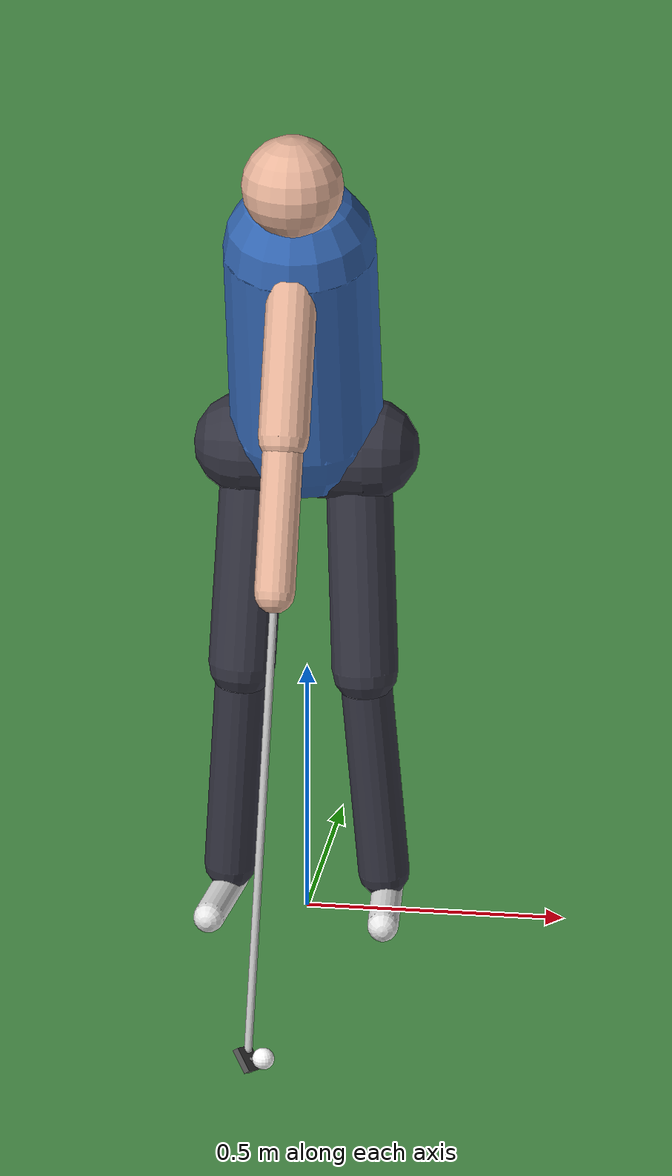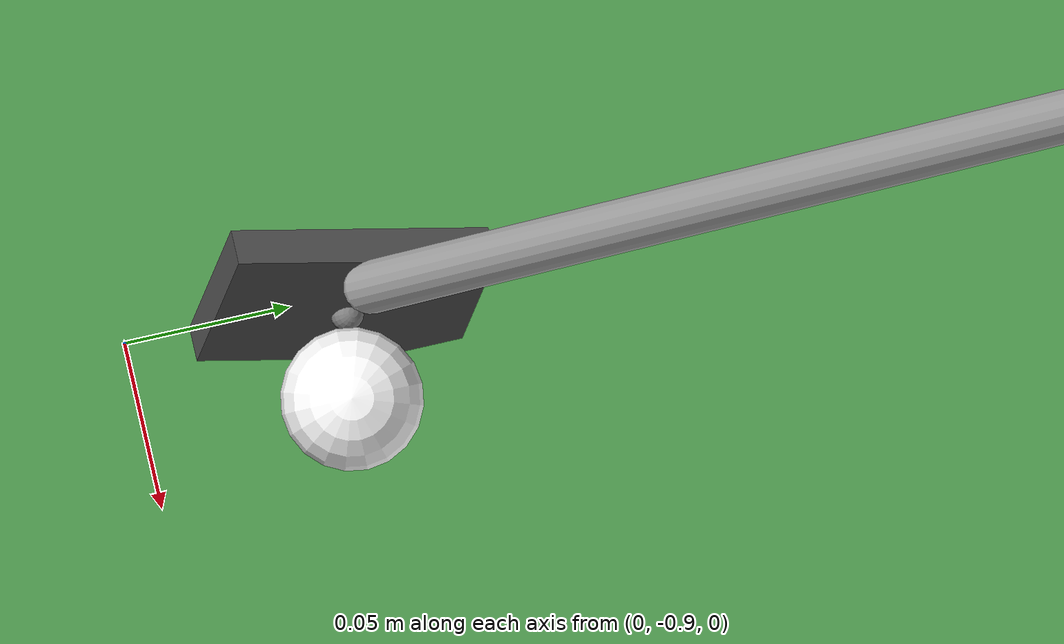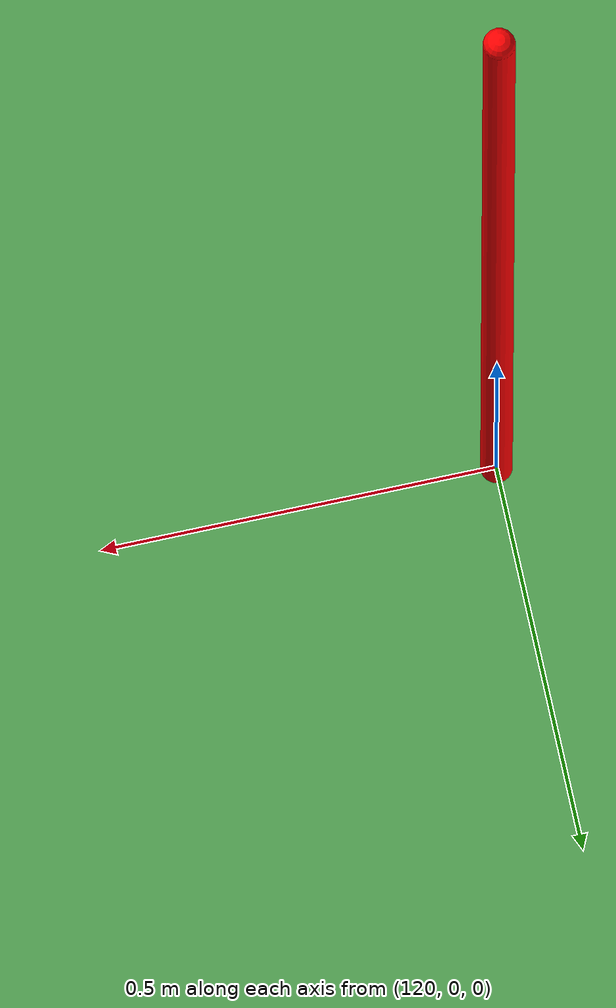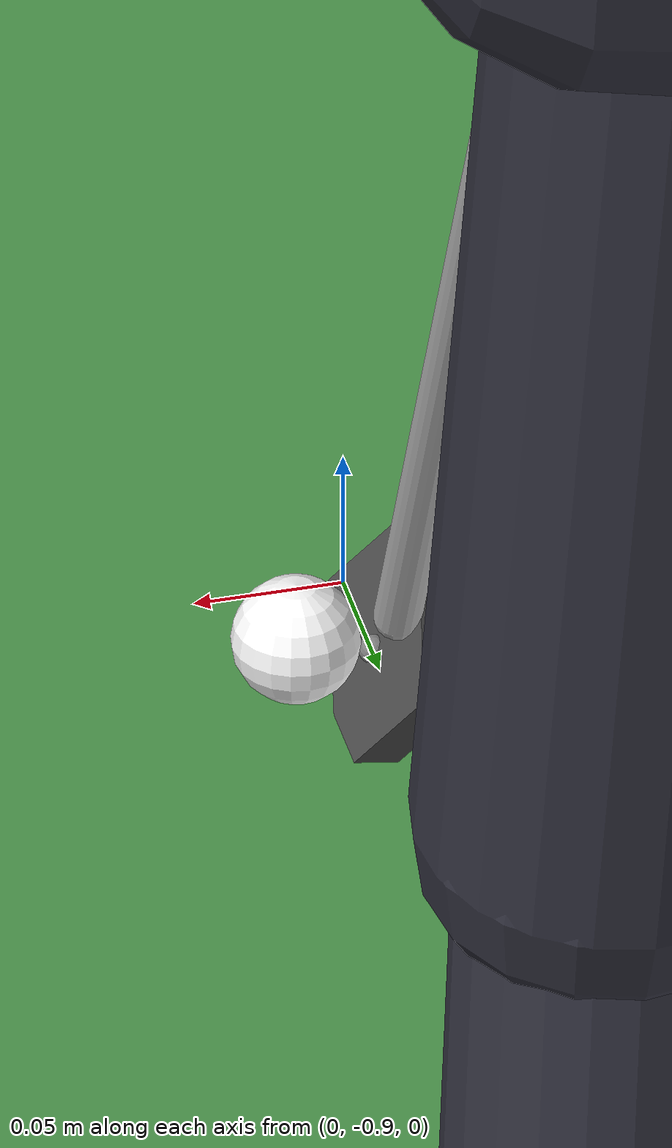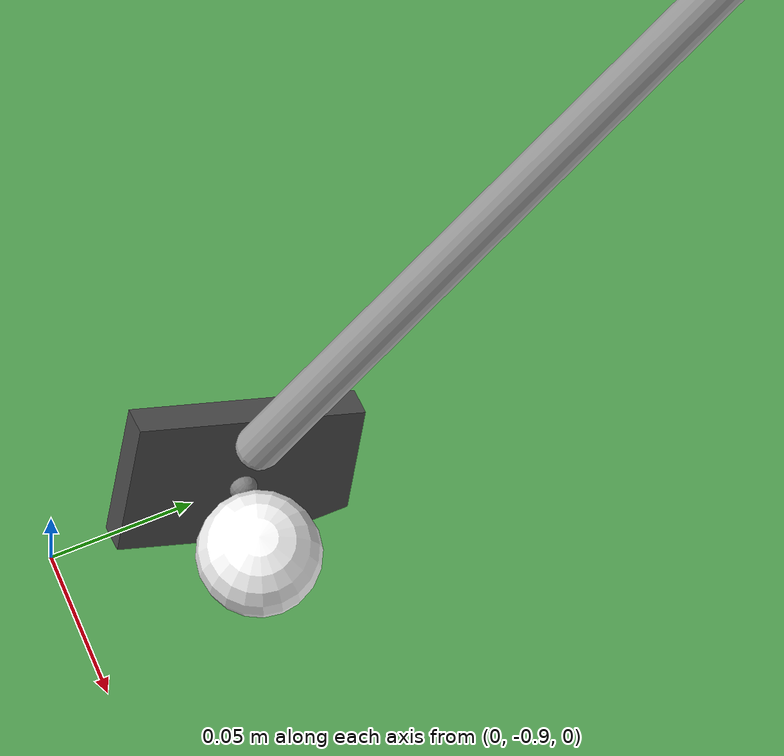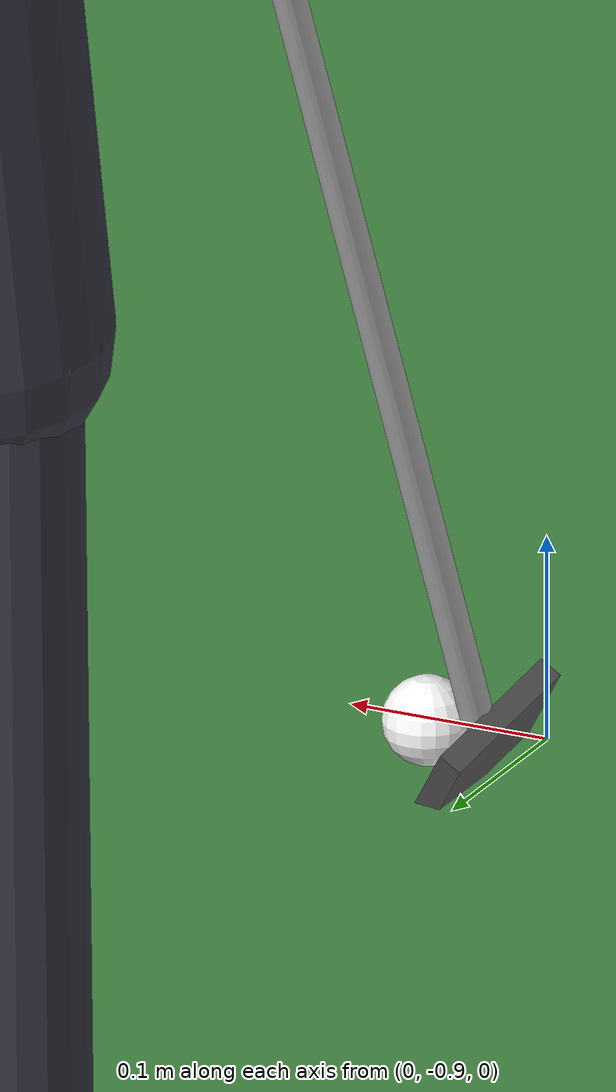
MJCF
<mujoco model="golfista">

  <!-- dt pequeno: a cabeça do taco chega a ~40 m/s. Com dt = 0.002 s andava
       8 cm por passo e podia atravessar a bola (diâmetro 4.3 cm). -->
  <option timestep="0.00005" integrator="implicitfast" gravity="0 0 -9.81"
          density="1.2" viscosity="0.000018"/>

  <visual>
    <map zfar="300"/>
  </visual>

  <!-- valores por omissão para não repetir em todas as geoms e juntas -->
  <default>
    <geom contype="0" conaffinity="0"/>
    <joint type="hinge"/>
  </default>

  <worldbody>
    <light directional="true" pos="0 -2 5" dir="0.2 0.4 -1"/>
    <geom name="chao" type="plane" size="150 30 0.1" rgba="0.3 0.6 0.3 1"/>

    <!-- alvo (bandeira) a 120 m -->
    <geom name="bandeira" type="capsule" fromto="120 0 0  120 0 2" size="0.02" rgba="1 0 0 1"/>

    <camera name="frente" pos="0 -3.5 1" xyaxes="1 0 0  0 0 1"/>
    <camera name="lado" pos="-3.5 -0.5 1.2" xyaxes="0 -1 0  0 0 1"/>

    <!-- ================= PERNA ESQUERDA (raiz da árvore) ================= -->
    <!-- pé esquerdo: preso ao chão (body sem junta). Frame no tornozelo. -->
    <body name="pe_esq" pos="0.15 0 0.08">
      <geom name="pe_esq" type="capsule" fromto="0 0.06 -0.05  0.02 -0.16 -0.05" size="0.03" mass="1" rgba="0.9 0.9 0.9 1"/>

      <!-- perna (canela): frame no tornozelo -->
      <body name="perna_esq">
        <!-- tornozelo: dorsiflexão (+) / flexão plantar (-) -->
        <joint name="tornozelo_esq_flex" axis="1 0 0" range="-46 24" damping="2" frictionloss="0.5"/>
        <!-- tornozelo: inversão/eversão (o pé "rola" para o lado) -->
        <joint name="tornozelo_esq_lado" axis="0 1 0" range="-20 20" damping="2" frictionloss="0.5"/>
        <!-- tornozelo: abdução/adução (a ponta do pé roda para dentro/fora) -->
        <joint name="tornozelo_esq_rot" axis="0 0 1" range="-10 10" damping="2" frictionloss="0.5"/>
        <!-- perna: 0.44 m, 3.5 kg -->
        <geom name="perna_esq" type="capsule" fromto="0 0 0  -0.03 -0.05 0.44" size="0.05" mass="3.5" rgba="0.2 0.2 0.25 1"/>

        <!-- coxa: frame no joelho -->
        <body name="coxa_esq" pos="-0.03 -0.05 0.44">
          <!-- joelho (negativo = dobrar). Flexão máx. 120 graus; já está 13 graus fletido -->
          <joint name="joelho_esq" axis="1 0 0" range="-107 13" damping="2" frictionloss="0.5"/>
          <!-- coxa: 0.44 m, 7.5 kg -->
          <geom name="coxa_esq" type="capsule" fromto="0 0 0  -0.02 0.05 0.44" size="0.065" mass="7.5" rgba="0.2 0.2 0.25 1"/>

          <!-- ================= PÉLVIS ================= -->
          <!-- frame na anca esquerda -->
          <body name="pelvis" pos="-0.02 0.05 0.44">
            <!-- anca esquerda: flexão, abdução e rotação (roda a anca sobre a perna esquerda) -->
            <!-- flexão (+) 120 / extensão 30 graus; já está 6.5 graus fletida -->
            <joint name="anca_esq_flex" axis="1 0 0" range="-36 114" damping="2" frictionloss="0.5"/>
            <!-- abdução (+) 50 / adução 30 graus -->
            <joint name="anca_esq_abd"  axis="0 1 0" range="-30 50" damping="2" frictionloss="0.5"/>
            <!-- rotação interna/externa 40 graus -->
            <joint name="anca_esq_rot"  axis="0 0 1" range="-40 40" damping="2" frictionloss="0.5"/>
            <!-- pélvis: 10 kg, entre as duas ancas -->
            <geom name="pelvis" type="capsule" fromto="0.02 0 0  -0.22 0 0" size="0.1" mass="10" rgba="0.2 0.2 0.25 1"/>

            <!-- ================= PERNA DIREITA ================= -->
            <!-- coxa direita: frame na anca direita (20 cm à direita da esquerda) -->
            <body name="coxa_dir" pos="-0.2 0 0">
              <!-- mesmos limites da anca esquerda; aqui a flexão é negativa -->
              <joint name="anca_dir_flex" axis="1 0 0" range="-114 36" damping="2" frictionloss="0.5"/>
              <joint name="anca_dir_abd"  axis="0 1 0" range="-30 50" damping="2" frictionloss="0.5"/>
              <joint name="anca_dir_rot"  axis="0 0 1" range="-40 40" damping="2" frictionloss="0.5"/>
              <geom name="coxa_dir" type="capsule" fromto="0 0 0  -0.02 -0.05 -0.44" size="0.065" mass="7.5" rgba="0.2 0.2 0.25 1"/>

              <!-- perna direita: frame no joelho -->
              <body name="perna_dir" pos="-0.02 -0.05 -0.44">
                <!-- joelho (positivo = dobrar) -->
                <joint name="joelho_dir" axis="1 0 0" range="-13 107" damping="2" frictionloss="0.5"/>
                <geom name="perna_dir" type="capsule" fromto="0 0 0  -0.03 0.05 -0.44" size="0.05" mass="3.5" rgba="0.2 0.2 0.25 1"/>

                <!-- pé direito: frame no tornozelo -->
                <body name="pe_dir" pos="-0.03 0.05 -0.44">
                  <!-- aqui flexão plantar é positiva e dorsiflexão negativa -->
                  <joint name="tornozelo_dir_flex" axis="1 0 0" range="-24 46" damping="2" frictionloss="0.5"/>
                  <joint name="tornozelo_dir_lado" axis="0 1 0" range="-20 20" damping="2" frictionloss="0.5"/>
                  <joint name="tornozelo_dir_rot"  axis="0 0 1" range="-10 10" damping="2" frictionloss="0.5"/>
                  <geom name="pe_dir" type="capsule" fromto="0 0.06 -0.05  -0.02 -0.16 -0.05" size="0.03" mass="1" rgba="0.9 0.9 0.9 1"/>
                </body>
              </body>
            </body>

            <!-- ================= TRONCO ================= -->
            <!-- frame do tronco: a meio das ancas, a 0.96 m do chão -->
            <body name="tronco" pos="-0.1 0 0">
              <!-- cintura: rotação, flexão para a frente e inclinação lateral -->
              <!-- rotação 80 graus para cada lado, flexão (+) 90 / extensão 25, inclinação 45 (DSHS) -->
              <joint name="tronco_rot"  axis="0 0 1" range="-80 80" damping="2" frictionloss="0.5"/>
              <joint name="tronco_flex" axis="1 0 0" range="-25 90" damping="2" frictionloss="0.5"/>
              <joint name="tronco_lado" axis="0 1 0" range="-45 45" damping="2" frictionloss="0.5"/>
              <!-- tronco 26 kg + cabeça 5 kg -->
              <geom name="tronco" type="capsule" fromto="0 0 0.05  0 -0.1 0.45" size="0.15" mass="26" rgba="0.2 0.4 0.7 1"/>
              <geom name="cabeca" type="sphere" pos="0 -0.2 0.62" size="0.1" mass="5" rgba="0.9 0.7 0.6 1"/>

              <!-- ================= BRAÇOS (os dois juntos) ================= -->
              <!-- frame nos ombros, rodado -25 graus em x: assim o -z local aponta dos
                   ombros para a bola e o plano do swing é o plano xz local -->
              <body name="bracos" pos="0 -0.2 0.42" euler="-25 0 0">
                <!-- ombro: roda os braços dentro do plano do swing (eixo y local) -->
                <joint name="ombro" axis="0 1 0" range="-150 150" damping="0.5" frictionloss="0.2"/>
                <!-- ombro: tira os braços do plano do swing (eixo x local) -->
                <joint name="ombro_fora" axis="1 0 0" range="-45 45" damping="0.5" frictionloss="0.2"/>
                <!-- braços: 2 x 2.1 kg, 0.3 m -->
                <geom name="bracos" type="capsule" fromto="0 0 0  0 0 -0.3" size="0.05" mass="4.2" rgba="0.9 0.7 0.6 1"/>

                <!-- antebraços + mãos: frame nos cotovelos -->
                <body name="antebracos" pos="0 0 -0.3">
                  <!-- cotovelos: dobram dentro do plano do swing, 0 a 150 graus (DSHS) -->
                  <joint name="cotovelo" axis="0 1 0" range="0 150" damping="0.3" frictionloss="0.1"/>
                  <!-- antebraços + mãos: 2 x (1.2 + 0.45) kg, 0.3 m -->
                  <geom name="antebracos" type="capsule" fromto="0 0 0  0 0 -0.3" size="0.04" mass="3.3" rgba="0.9 0.7 0.6 1"/>

                  <!-- ================= TACO (7-iron simplificado) ================= -->
                  <!-- frame nas mãos (pulsos) -->
                  <body name="taco" pos="0 0 -0.3">
                    <joint name="pulso" axis="0 1 0" range="-30 80" damping="0.1" frictionloss="0.05"/>
                    <!-- pulso: flexão/extensão do pulso esquerdo, tira o taco do plano (60 graus).
                         É aqui que entra o pulso "shaky" -->
                    <joint name="pulso_fora" axis="1 0 0" range="-60 60" damping="0.1" frictionloss="0.05"/>
                    <!-- pronação/supinação dos antebraços (80 graus): roda o taco em torno da haste (abre/fecha a face) -->
                    <joint name="antebraco_rot" axis="0 0 1" range="-80 80" damping="0.05" frictionloss="0.02"/>
                    <!-- haste: 0.88 m, 0.15 kg (pega + haste) -->
                    <geom name="haste" type="capsule" fromto="0 0 0  0 0 -0.88" size="0.008" mass="0.15" rgba="0.7 0.7 0.7 1"/>
                    <!-- cabeça: placa 1.2 x 8 x 5 cm, 0.26 kg, face virada para +x com loft de 30 graus -->
                    <geom name="cabeca_taco" type="box" pos="0 0 -0.9" euler="0 -30 -13" size="0.006 0.04 0.025" mass="0.26" rgba="0.3 0.3 0.3 1"/>
                    <site name="face" pos="0.006 0 -0.9" size="0.005"/>
                  </body>
                </body>
              </body>
            </body>
          </body>
        </body>
      </body>
    </body>

    <!-- ================= BOLA ================= -->
    <!-- bola oficial: 45.9 g, raio 2.135 cm. Fica 5 mm acima do chão (relva). -->
    <body name="bola" pos="0.031 -0.838 0.026">
      <freejoint/>
      <!-- fluidshape: arrasto do ar + efeito Magnus (spin). Os coeficientes por
           omissão davam só ~80 m de carry, por isso baixei o arrasto (1º valor). -->
      <geom name="bola" type="sphere" size="0.02135" mass="0.0459" rgba="1 1 1 1"
            fluidshape="ellipsoid" fluidcoef="0.14 0.25 1.5 1.0 1.0"/>
      <site name="bola" size="0.005"/>
    </body>
  </worldbody>

  <!-- ================= PÉ DIREITO PRESO AO CHÃO ================= -->
  <!-- weld sem body2 = soldado ao mundo, na posição inicial -->
  <equality>
    <weld name="pe_dir_no_chao" body1="pe_dir" solref="0.0005 1"/>
  </equality>

  <!-- ================= CONTACTOS ================= -->
  <!-- Só estes dois pares colidem (todas as geoms têm contype=0).
       solref = (constante de tempo, amortecimento), afinado por tentativa e erro. -->
  <contact>
    <!-- taco-bola: restituição ~0.8, impacto dura ~0.5 ms -->
    <pair geom1="cabeca_taco" geom2="bola" condim="3" friction="0.4 0.4" solref="0.002 0.08" solimp="0.99 0.999 0.0001"/>
    <!-- bola-relva: restituição ~0.4; margin = 5 mm de relva -->
    <pair geom1="bola" geom2="chao" condim="6" margin="0.005" friction="0.5 0.5 0.005 0.003 0.003" solref="0.004 0.35"/>
  </contact>

  <!-- ================= ATUADORES ================= -->
  <actuator>
    <!-- pernas -->
    <position name="m_tornozelo_esq_flex" joint="tornozelo_esq_flex" kp="3000" kv="60" ctrlrange="-0.80 0.42" forcerange="-150 150"/>
    <position name="m_tornozelo_esq_lado" joint="tornozelo_esq_lado" kp="2000" kv="40" ctrlrange="-0.35 0.35" forcerange="-60 60"/>
    <position name="m_tornozelo_esq_rot"  joint="tornozelo_esq_rot"  kp="1500" kv="40" ctrlrange="-0.17 0.17" forcerange="-40 40"/>
    <position name="m_joelho_esq"         joint="joelho_esq"         kp="3000" kv="60" ctrlrange="-1.87 0.23" forcerange="-200 200"/>
    <position name="m_anca_esq_flex"      joint="anca_esq_flex"      kp="3000" kv="60" ctrlrange="-0.63 1.99" forcerange="-200 200"/>
    <position name="m_anca_esq_abd"       joint="anca_esq_abd"       kp="2000" kv="40" ctrlrange="-0.52 0.87" forcerange="-120 120"/>
    <position name="m_anca_esq_rot"       joint="anca_esq_rot"       kp="1500" kv="40" ctrlrange="-0.70 0.70" forcerange="-80 80"/>
    <position name="m_anca_dir_flex"      joint="anca_dir_flex"      kp="3000" kv="60" ctrlrange="-1.99 0.63" forcerange="-200 200"/>
    <position name="m_anca_dir_abd"       joint="anca_dir_abd"       kp="2000" kv="40" ctrlrange="-0.52 0.87" forcerange="-120 120"/>
    <position name="m_anca_dir_rot"       joint="anca_dir_rot"       kp="1500" kv="40" ctrlrange="-0.70 0.70" forcerange="-80 80"/>
    <position name="m_joelho_dir"         joint="joelho_dir"         kp="3000" kv="60" ctrlrange="-0.23 1.87" forcerange="-200 200"/>
    <position name="m_tornozelo_dir_flex" joint="tornozelo_dir_flex" kp="3000" kv="60" ctrlrange="-0.42 0.80" forcerange="-150 150"/>
    <position name="m_tornozelo_dir_lado" joint="tornozelo_dir_lado" kp="2000" kv="40" ctrlrange="-0.35 0.35" forcerange="-60 60"/>
    <position name="m_tornozelo_dir_rot"  joint="tornozelo_dir_rot"  kp="1500" kv="40" ctrlrange="-0.17 0.17" forcerange="-40 40"/>
    <!-- tronco -->
    <position name="m_tronco_rot"  joint="tronco_rot"  kp="1500" kv="60" ctrlrange="-1.40 1.40" forcerange="-150 150"/>
    <position name="m_tronco_flex" joint="tronco_flex" kp="3000" kv="60" ctrlrange="-0.44 1.57" forcerange="-200 200"/>
    <position name="m_tronco_lado" joint="tronco_lado" kp="2000" kv="40" ctrlrange="-0.79 0.79" forcerange="-150 150"/>
    <!-- braços e taco -->
    <position name="m_ombro"         joint="ombro"         kp="800" kv="30" ctrlrange="-2.62 2.62" forcerange="-160 160"/>
    <position name="m_ombro_fora"    joint="ombro_fora"    kp="500" kv="20" ctrlrange="-0.78 0.78" forcerange="-100 100"/>
    <position name="m_cotovelo"      joint="cotovelo"      kp="400" kv="10" ctrlrange="0 2.62"    forcerange="-80 80"/>
    <position name="m_pulso"         joint="pulso"         kp="150" kv="3"  ctrlrange="-0.52 1.40" forcerange="-50 50"/>
    <position name="m_pulso_fora"    joint="pulso_fora"    kp="100" kv="2"  ctrlrange="-1.05 1.05" forcerange="-40 40"/>
    <position name="m_antebraco_rot" joint="antebraco_rot" kp="50"  kv="1"  ctrlrange="-1.40 1.40" forcerange="-20 20"/>
  </actuator>

  <sensor>
    <framelinvel name="vel_cabeca_taco" objtype="site" objname="face"/>
    <framepos    name="pos_bola" objtype="site" objname="bola"/>
    <framelinvel name="vel_bola" objtype="site" objname="bola"/>
  </sensor>
</mujoco>
